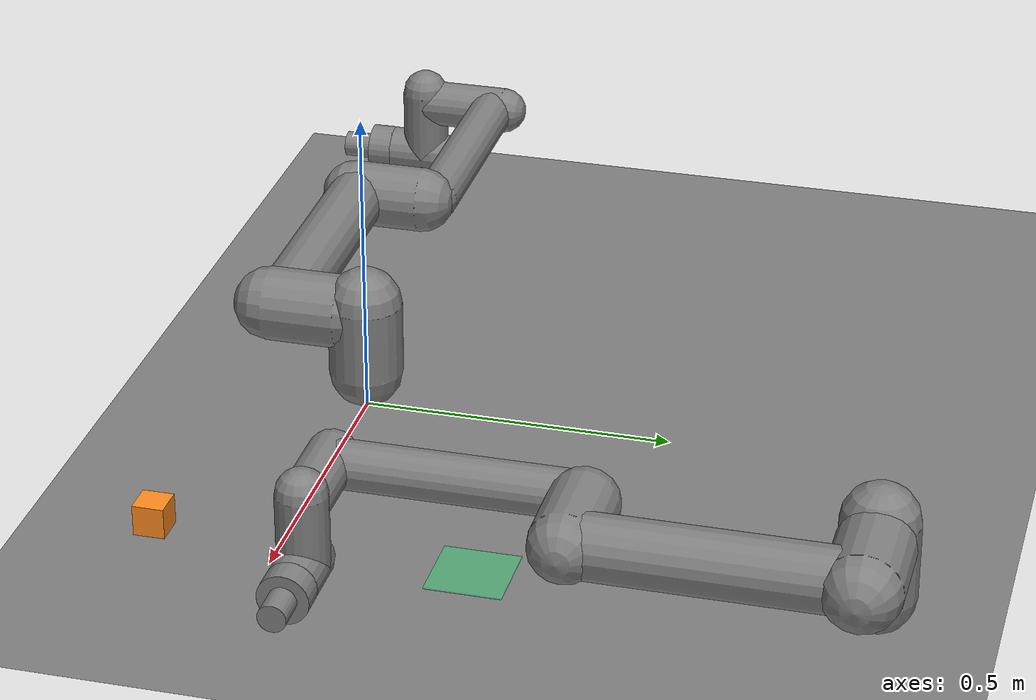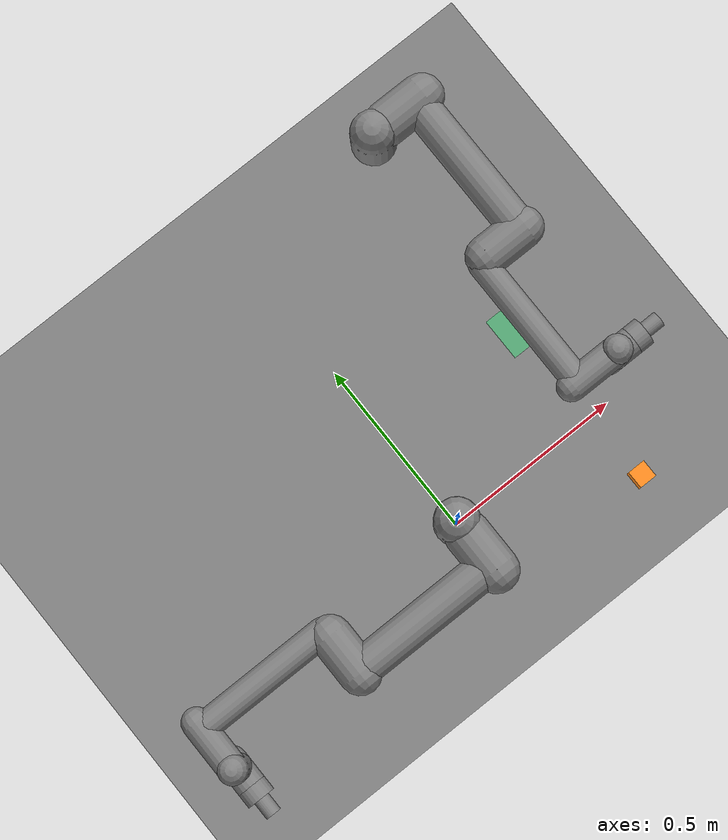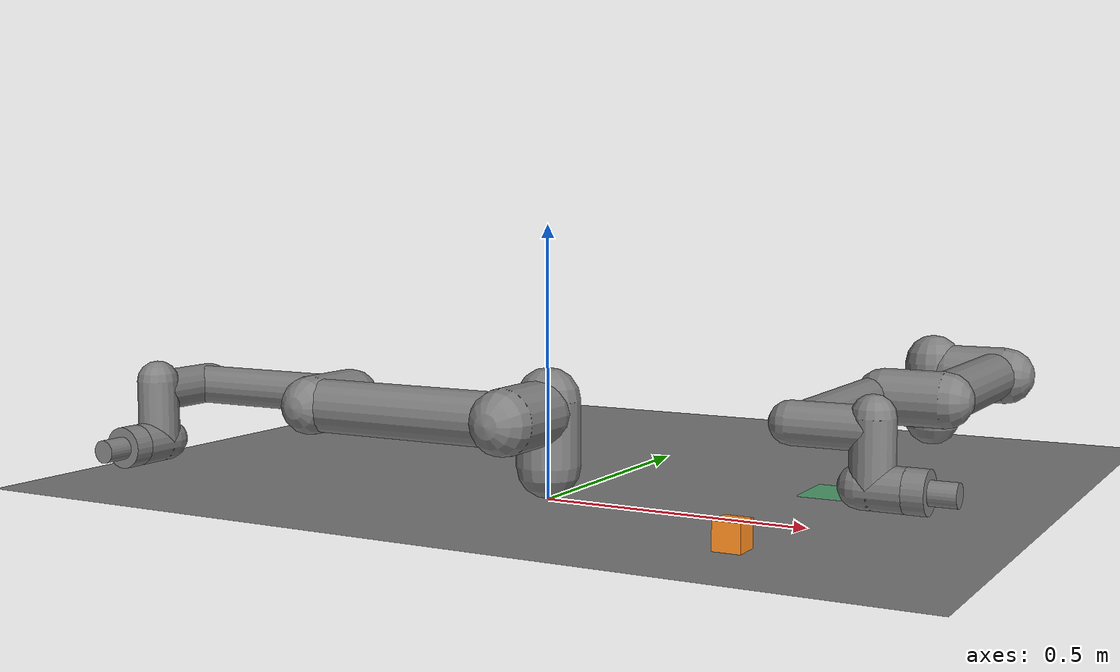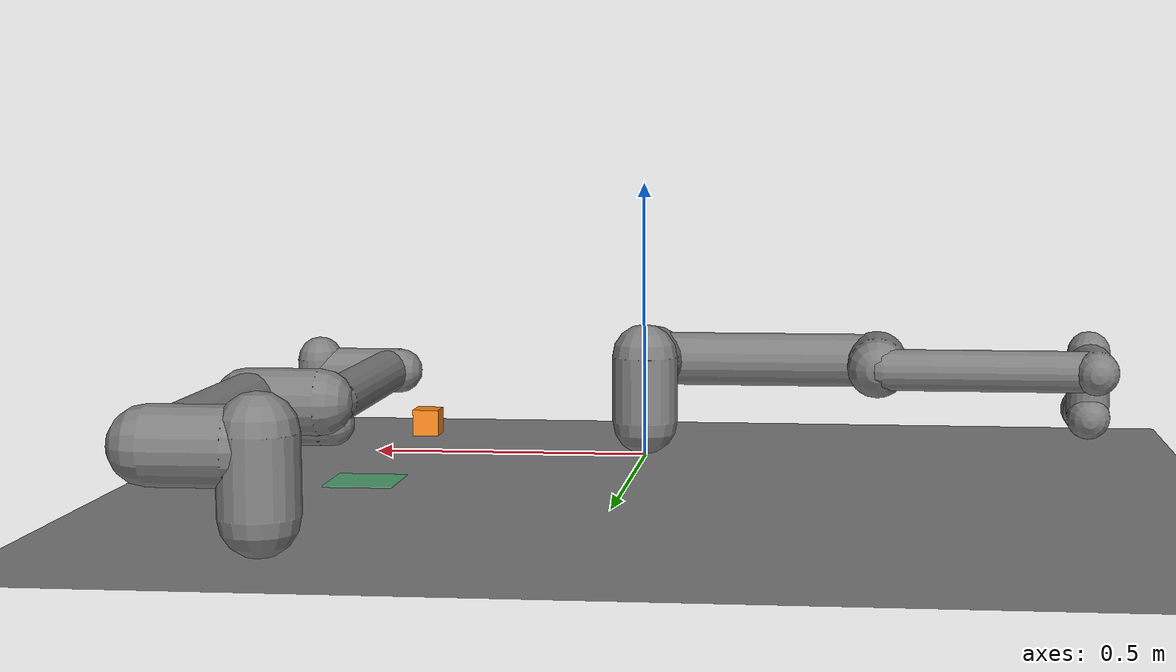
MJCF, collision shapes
<mujoco model="ur5e">
  <compiler angle="radian" meshdir="assets" autolimits="true" />

  <option integrator="implicitfast" timestep="0.005" />

  <default>
    <default class="ur5e">
      <material specular="0.5" shininess="0.25" />
      <joint axis="0 1 0" range="-6.28319 6.28319" armature="0.1" />
      <general gaintype="fixed" biastype="affine" ctrlrange="-6.2831 6.2831" gainprm="2000" biasprm="0 -2000 -400" forcerange="-150 150" />
      <default class="size3">
        <default class="size3_limited">
          <joint range="-3.1415 3.1415" />
          <general ctrlrange="-3.1415 3.1415" />
        </default>
      </default>
      <default class="size1">
        <general gainprm="500" biasprm="0 -500 -100" forcerange="-28 28" />
      </default>
      <default class="visual">
        <geom type="mesh" contype="0" conaffinity="0" group="2" />
      </default>
      <default class="collision">
        <geom type="capsule" group="3" />
        <default class="eef_collision">
          <geom type="cylinder" />
        </default>
      </default>
      <site size="0.001" rgba="0.5 0.5 0.5 0.3" group="4" />
    </default>
  </default>

  <asset>
    <material class="ur5e" name="black" rgba="0.033 0.033 0.033 1" />
    <material class="ur5e" name="jointgray" rgba="0.278 0.278 0.278 1" />
    <material class="ur5e" name="linkgray" rgba="0.82 0.82 0.82 1" />
    <material class="ur5e" name="urblue" rgba="0.49 0.678 0.8 1" />

    <mesh file="base_0.obj" />
    <mesh file="base_1.obj" />
    <mesh file="shoulder_0.obj" />
    <mesh file="shoulder_1.obj" />
    <mesh file="shoulder_2.obj" />
    <mesh file="upperarm_0.obj" />
    <mesh file="upperarm_1.obj" />
    <mesh file="upperarm_2.obj" />
    <mesh file="upperarm_3.obj" />
    <mesh file="forearm_0.obj" />
    <mesh file="forearm_1.obj" />
    <mesh file="forearm_2.obj" />
    <mesh file="forearm_3.obj" />
    <mesh file="wrist1_0.obj" />
    <mesh file="wrist1_1.obj" />
    <mesh file="wrist1_2.obj" />
    <mesh file="wrist2_0.obj" />
    <mesh file="wrist2_1.obj" />
    <mesh file="wrist2_2.obj" />
    <mesh file="wrist3.obj" />
  </asset>

  <worldbody>
    <light name="spotlight" mode="targetbodycom" target="wrist_2_link" pos="0 -1 2" />
    <body name="base" quat="0 0 0 -1" childclass="ur5e">
      <inertial mass="4.0" pos="0 0 0" diaginertia="0.00443333156 0.00443333156 0.0072" />
      <geom mesh="base_0" material="black" class="visual" />
      <geom mesh="base_1" material="jointgray" class="visual" />
      <body name="shoulder_link" pos="0 0 0.163">
        <inertial mass="3.7" pos="0 0 0" diaginertia="0.0102675 0.0102675 0.00666" />
        <joint name="shoulder_pan_joint" class="size3" axis="0 0 1" />
        <geom mesh="shoulder_0" material="urblue" class="visual" />
        <geom mesh="shoulder_1" material="black" class="visual" />
        <geom mesh="shoulder_2" material="jointgray" class="visual" />
        <geom class="collision" size="0.06 0.06" pos="0 0 -0.04" />
        <body name="upper_arm_link" pos="0 0.138 0" quat="1 0 1 0">
          <inertial mass="8.393" pos="0 0 0.2125" diaginertia="0.133886 0.133886 0.0151074" />
          <joint name="shoulder_lift_joint" class="size3" />
          <geom mesh="upperarm_0" material="linkgray" class="visual" />
          <geom mesh="upperarm_1" material="black" class="visual" />
          <geom mesh="upperarm_2" material="jointgray" class="visual" />
          <geom mesh="upperarm_3" material="urblue" class="visual" />
          <geom class="collision" pos="0 -0.04 0" quat="1 1 0 0" size="0.06 0.06" />
          <geom class="collision" size="0.05 0.2" pos="0 0 0.2" />
          <body name="forearm_link" pos="0 -0.131 0.425">
            <inertial mass="2.275" pos="0 0 0.196" diaginertia="0.0311796 0.0311796 0.004095" />
            <joint name="elbow_joint" class="size3_limited" />
            <geom mesh="forearm_0" material="urblue" class="visual" />
            <geom mesh="forearm_1" material="linkgray" class="visual" />
            <geom mesh="forearm_2" material="black" class="visual" />
            <geom mesh="forearm_3" material="jointgray" class="visual" />
            <geom class="collision" pos="0 0.08 0" quat="1 1 0 0" size="0.055 0.06" />
            <geom class="collision" size="0.038 0.19" pos="0 0 0.2" />
            <body name="wrist_1_link" pos="0 0 0.392" quat="1 0 1 0">
              <inertial mass="1.219" pos="0 0.127 0" diaginertia="0.0025599 0.0025599 0.0021942" />
              <joint name="wrist_1_joint" class="size1" />
              <geom mesh="wrist1_0" material="black" class="visual" />
              <geom mesh="wrist1_1" material="urblue" class="visual" />
              <geom mesh="wrist1_2" material="jointgray" class="visual" />
              <geom class="collision" pos="0 0.05 0" quat="1 1 0 0" size="0.04 0.07" />
              <body name="wrist_2_link" pos="0 0.127 0">
                <inertial mass="1.219" pos="0 0 0.1" diaginertia="0.0025599 0.0025599 0.0021942" />
                <joint name="wrist_2_joint" axis="0 0 1" class="size1" />
                <geom mesh="wrist2_0" material="black" class="visual" />
                <geom mesh="wrist2_1" material="urblue" class="visual" />
                <geom mesh="wrist2_2" material="jointgray" class="visual" />
                <geom class="collision" size="0.04 0.06" pos="0 0 0.04" />
                <geom class="collision" pos="0 0.02 0.1" quat="1 1 0 0" size="0.04 0.04" />
                <body name="wrist_3_link" pos="0 0 0.1">
                  <inertial mass="0.1889" pos="0 0.0771683 0" quat="1 0 0 1" diaginertia="0.000132134 9.90863e-05 9.90863e-05" />
                  <joint name="wrist_3_joint" class="size1" />
                  <geom material="linkgray" mesh="wrist3" class="visual" />
                  <geom class="eef_collision" pos="0 0.08 0" quat="1 1 0 0" size="0.04 0.02" />
                  <site name="attachment_site" pos="0 0.1 0" quat="-1 1 0 0" />
                <body name="suction_cup" pos="0 0.1 0" quat="-1 1 0 0"><geom type="cylinder" pos="0 0 0.025" size="0.022 0.025" mass="0.05" contype="0" conaffinity="0" /><site name="tcp" pos="0 0 0.05" size="0.004" /></body></body>
              </body>
            </body>
          </body>
        </body>
      </body>
    </body>
  <geom type="plane" size="2 2 0.1" contype="1" conaffinity="3" /><light pos="1 1 3" /><light name="b_spotlight" mode="targetbodycom" target="wrist_2_link" pos="0 -1 2" />
    <body name="b_base" quat="0.70710678 0 0 -0.70710678" childclass="ur5e" pos="0.45 0.9 0.0">
      <inertial mass="4.0" pos="0 0 0" diaginertia="0.00443333156 0.00443333156 0.0072" />
      <geom mesh="base_0" material="black" class="visual" />
      <geom mesh="base_1" material="jointgray" class="visual" />
      <body name="b_shoulder_link" pos="0 0 0.163">
        <inertial mass="3.7" pos="0 0 0" diaginertia="0.0102675 0.0102675 0.00666" />
        <joint name="b_shoulder_pan_joint" class="size3" axis="0 0 1" />
        <geom mesh="shoulder_0" material="urblue" class="visual" />
        <geom mesh="shoulder_1" material="black" class="visual" />
        <geom mesh="shoulder_2" material="jointgray" class="visual" />
        <geom class="collision" size="0.06 0.06" pos="0 0 -0.04" />
        <body name="b_upper_arm_link" pos="0 0.138 0" quat="1 0 1 0">
          <inertial mass="8.393" pos="0 0 0.2125" diaginertia="0.133886 0.133886 0.0151074" />
          <joint name="b_shoulder_lift_joint" class="size3" />
          <geom mesh="upperarm_0" material="linkgray" class="visual" />
          <geom mesh="upperarm_1" material="black" class="visual" />
          <geom mesh="upperarm_2" material="jointgray" class="visual" />
          <geom mesh="upperarm_3" material="urblue" class="visual" />
          <geom class="collision" pos="0 -0.04 0" quat="1 1 0 0" size="0.06 0.06" />
          <geom class="collision" size="0.05 0.2" pos="0 0 0.2" />
          <body name="b_forearm_link" pos="0 -0.131 0.425">
            <inertial mass="2.275" pos="0 0 0.196" diaginertia="0.0311796 0.0311796 0.004095" />
            <joint name="b_elbow_joint" class="size3_limited" />
            <geom mesh="forearm_0" material="urblue" class="visual" />
            <geom mesh="forearm_1" material="linkgray" class="visual" />
            <geom mesh="forearm_2" material="black" class="visual" />
            <geom mesh="forearm_3" material="jointgray" class="visual" />
            <geom class="collision" pos="0 0.08 0" quat="1 1 0 0" size="0.055 0.06" />
            <geom class="collision" size="0.038 0.19" pos="0 0 0.2" />
            <body name="b_wrist_1_link" pos="0 0 0.392" quat="1 0 1 0">
              <inertial mass="1.219" pos="0 0.127 0" diaginertia="0.0025599 0.0025599 0.0021942" />
              <joint name="b_wrist_1_joint" class="size1" />
              <geom mesh="wrist1_0" material="black" class="visual" />
              <geom mesh="wrist1_1" material="urblue" class="visual" />
              <geom mesh="wrist1_2" material="jointgray" class="visual" />
              <geom class="collision" pos="0 0.05 0" quat="1 1 0 0" size="0.04 0.07" />
              <body name="b_wrist_2_link" pos="0 0.127 0">
                <inertial mass="1.219" pos="0 0 0.1" diaginertia="0.0025599 0.0025599 0.0021942" />
                <joint name="b_wrist_2_joint" axis="0 0 1" class="size1" />
                <geom mesh="wrist2_0" material="black" class="visual" />
                <geom mesh="wrist2_1" material="urblue" class="visual" />
                <geom mesh="wrist2_2" material="jointgray" class="visual" />
                <geom class="collision" size="0.04 0.06" pos="0 0 0.04" />
                <geom class="collision" pos="0 0.02 0.1" quat="1 1 0 0" size="0.04 0.04" />
                <body name="b_wrist_3_link" pos="0 0 0.1">
                  <inertial mass="0.1889" pos="0 0.0771683 0" quat="1 0 0 1" diaginertia="0.000132134 9.90863e-05 9.90863e-05" />
                  <joint name="b_wrist_3_joint" class="size1" />
                  <geom material="linkgray" mesh="wrist3" class="visual" />
                  <geom class="eef_collision" pos="0 0.08 0" quat="1 1 0 0" size="0.04 0.02" />
                  <site name="b_attachment_site" pos="0 0.1 0" quat="-1 1 0 0" />
                <body name="b_suction_cup" pos="0 0.1 0" quat="-1 1 0 0"><geom type="cylinder" pos="0 0 0.025" size="0.022 0.025" mass="0.05" contype="0" conaffinity="0" /><site name="b_tcp" pos="0 0 0.05" size="0.004" /></body></body>
              </body>
            </body>
          </body>
        </body>
      </body>
    </body>
  <site name="place_marker" type="box" pos="0.45 0.30 0.001" size="0.06 0.06 0.001" rgba="0.2 0.85 0.45 0.5" /><body name="cube" pos="0.45 -0.2 0.025"><freejoint /><geom name="cube_geom" type="box" size="0.025 0.025 0.025" mass="0.04" rgba="1 0.55 0.12 1" friction="1 0.01 0.001" contype="2" conaffinity="2" /></body></worldbody>

  <actuator><motor name="shoulder_pan_joint_motor" joint="shoulder_pan_joint" ctrllimited="true" ctrlrange="-150.0 150.0" /><motor name="shoulder_lift_joint_motor" joint="shoulder_lift_joint" ctrllimited="true" ctrlrange="-150.0 150.0" /><motor name="elbow_joint_motor" joint="elbow_joint" ctrllimited="true" ctrlrange="-150.0 150.0" /><motor name="wrist_1_joint_motor" joint="wrist_1_joint" ctrllimited="true" ctrlrange="-28.0 28.0" /><motor name="wrist_2_joint_motor" joint="wrist_2_joint" ctrllimited="true" ctrlrange="-28.0 28.0" /><motor name="wrist_3_joint_motor" joint="wrist_3_joint" ctrllimited="true" ctrlrange="-28.0 28.0" /><motor name="b_shoulder_pan_joint_motor" joint="b_shoulder_pan_joint" ctrllimited="true" ctrlrange="-150.0 150.0" /><motor name="b_shoulder_lift_joint_motor" joint="b_shoulder_lift_joint" ctrllimited="true" ctrlrange="-150.0 150.0" /><motor name="b_elbow_joint_motor" joint="b_elbow_joint" ctrllimited="true" ctrlrange="-150.0 150.0" /><motor name="b_wrist_1_joint_motor" joint="b_wrist_1_joint" ctrllimited="true" ctrlrange="-28.0 28.0" /><motor name="b_wrist_2_joint_motor" joint="b_wrist_2_joint" ctrllimited="true" ctrlrange="-28.0 28.0" /><motor name="b_wrist_3_joint_motor" joint="b_wrist_3_joint" ctrllimited="true" ctrlrange="-28.0 28.0" /></actuator><visual><global offwidth="960" offheight="720" /></visual><equality><weld name="suctionA" body1="suction_cup" body2="cube" active="false" solref="0.01 1" /><weld name="suctionB" body1="b_suction_cup" body2="cube" active="false" solref="0.01 1" /></equality><contact><exclude body1="base" body2="shoulder_link" /><exclude body1="base" body2="upper_arm_link" /><exclude body1="base" body2="forearm_link" /><exclude body1="base" body2="wrist_1_link" /><exclude body1="base" body2="wrist_2_link" /><exclude body1="base" body2="wrist_3_link" /><exclude body1="base" body2="suction_cup" /><exclude body1="shoulder_link" body2="upper_arm_link" /><exclude body1="shoulder_link" body2="forearm_link" /><exclude body1="shoulder_link" body2="wrist_1_link" /><exclude body1="shoulder_link" body2="wrist_2_link" /><exclude body1="shoulder_link" body2="wrist_3_link" /><exclude body1="shoulder_link" body2="suction_cup" /><exclude body1="upper_arm_link" body2="forearm_link" /><exclude body1="upper_arm_link" body2="wrist_1_link" /><exclude body1="upper_arm_link" body2="wrist_2_link" /><exclude body1="upper_arm_link" body2="wrist_3_link" /><exclude body1="upper_arm_link" body2="suction_cup" /><exclude body1="forearm_link" body2="wrist_1_link" /><exclude body1="forearm_link" body2="wrist_2_link" /><exclude body1="forearm_link" body2="wrist_3_link" /><exclude body1="forearm_link" body2="suction_cup" /><exclude body1="wrist_1_link" body2="wrist_2_link" /><exclude body1="wrist_1_link" body2="wrist_3_link" /><exclude body1="wrist_1_link" body2="suction_cup" /><exclude body1="wrist_2_link" body2="wrist_3_link" /><exclude body1="wrist_2_link" body2="suction_cup" /><exclude body1="wrist_3_link" body2="suction_cup" /><exclude body1="b_base" body2="b_shoulder_link" /><exclude body1="b_base" body2="b_upper_arm_link" /><exclude body1="b_base" body2="b_forearm_link" /><exclude body1="b_base" body2="b_wrist_1_link" /><exclude body1="b_base" body2="b_wrist_2_link" /><exclude body1="b_base" body2="b_wrist_3_link" /><exclude body1="b_base" body2="b_suction_cup" /><exclude body1="b_shoulder_link" body2="b_upper_arm_link" /><exclude body1="b_shoulder_link" body2="b_forearm_link" /><exclude body1="b_shoulder_link" body2="b_wrist_1_link" /><exclude body1="b_shoulder_link" body2="b_wrist_2_link" /><exclude body1="b_shoulder_link" body2="b_wrist_3_link" /><exclude body1="b_shoulder_link" body2="b_suction_cup" /><exclude body1="b_upper_arm_link" body2="b_forearm_link" /><exclude body1="b_upper_arm_link" body2="b_wrist_1_link" /><exclude body1="b_upper_arm_link" body2="b_wrist_2_link" /><exclude body1="b_upper_arm_link" body2="b_wrist_3_link" /><exclude body1="b_upper_arm_link" body2="b_suction_cup" /><exclude body1="b_forearm_link" body2="b_wrist_1_link" /><exclude body1="b_forearm_link" body2="b_wrist_2_link" /><exclude body1="b_forearm_link" body2="b_wrist_3_link" /><exclude body1="b_forearm_link" body2="b_suction_cup" /><exclude body1="b_wrist_1_link" body2="b_wrist_2_link" /><exclude body1="b_wrist_1_link" body2="b_wrist_3_link" /><exclude body1="b_wrist_1_link" body2="b_suction_cup" /><exclude body1="b_wrist_2_link" body2="b_wrist_3_link" /><exclude body1="b_wrist_2_link" body2="b_suction_cup" /><exclude body1="b_wrist_3_link" body2="b_suction_cup" /><exclude body1="wrist_2_link" body2="b_wrist_2_link" /><exclude body1="wrist_3_link" body2="b_wrist_3_link" /></contact></mujoco>
